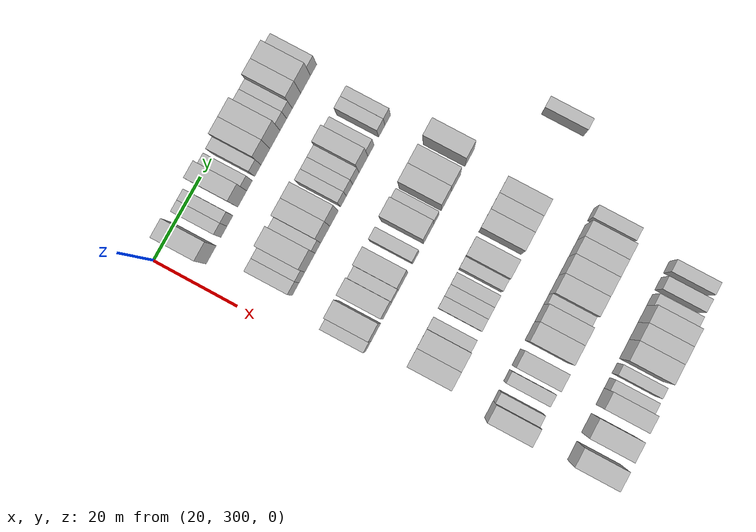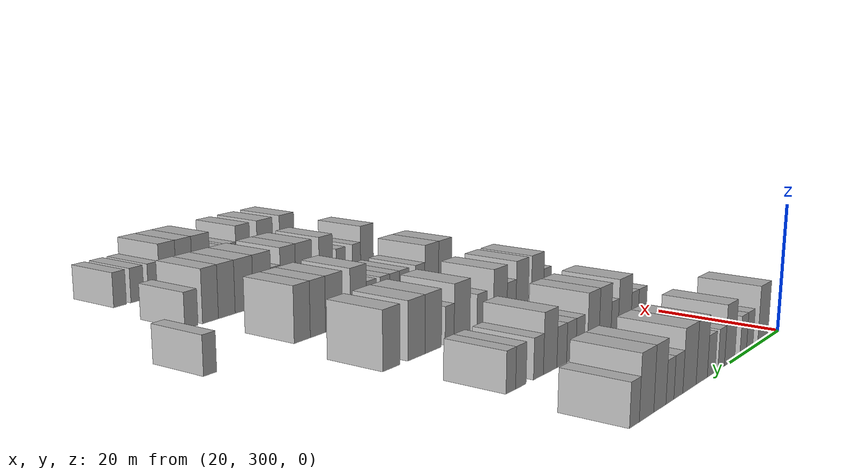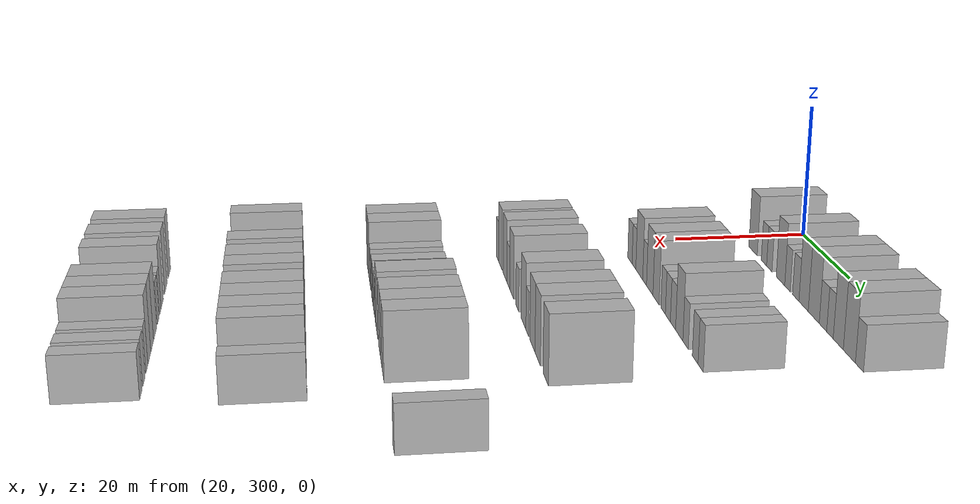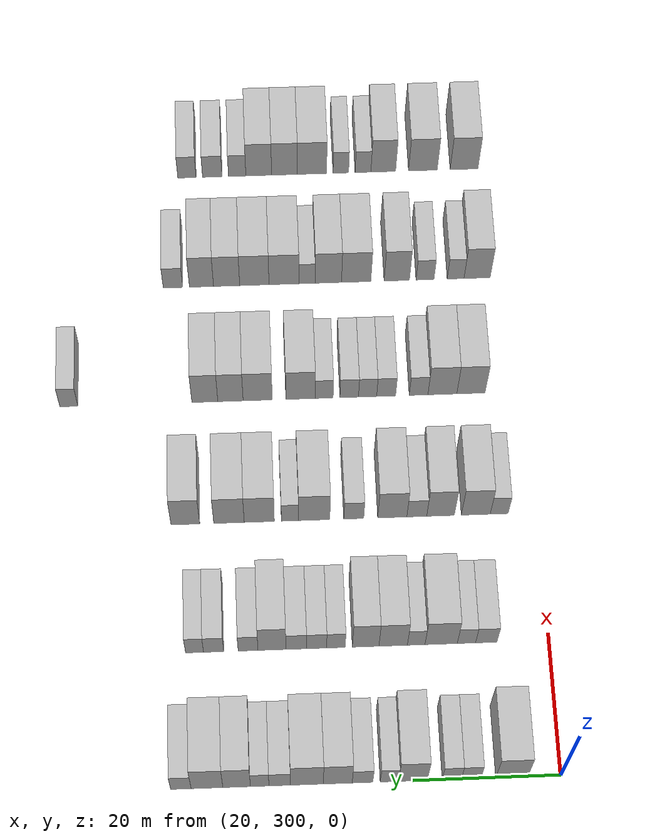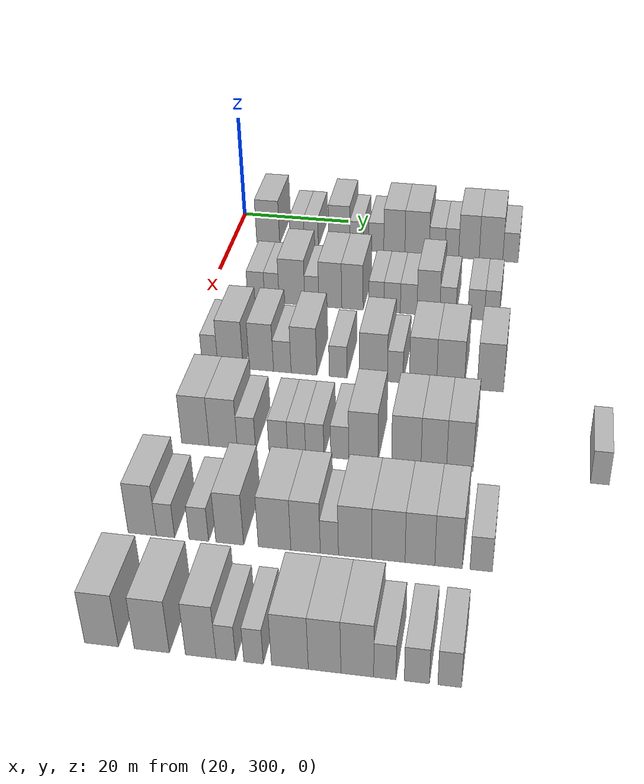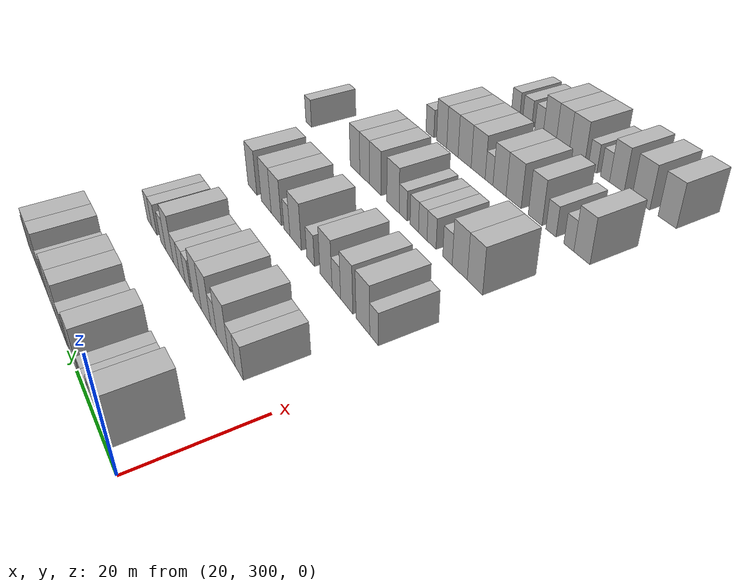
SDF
<sdf version="1.6">
 <world name="default">
  <model name="building_158">
   <static>1</static>
   <pose>25.0000 306.7007 0 0.000000 0.000000 0.000000</pose>
   <link name="link">
    <pose>0 0 4.50 0 0 0</pose>
    <collision name="collision"><geometry><box><size>10.0000 4.3283 9.0000</size></box></geometry></collision>
    <visual name="visual">
     <cast_shadows>0</cast_shadows>
     <geometry><box><size>10.0000 4.3283 9.0000</size></box></geometry>
     <material>
      <script>
       <uri>model://HANNAS_wall/materials/scripts</uri>
       <uri>model://HANNAS_wall/materials/textures</uri>
       <name>vrc/HANNAS_wall</name>
      </script>
     </material>
    </visual>
   </link>
  </model>
  <model name="building_159">
   <static>1</static>
   <pose>25.0000 312.1822 0 0.000000 0.000000 0.000000</pose>
   <link name="link">
    <pose>0 0 3.00 0 0 0</pose>
    <collision name="collision"><geometry><box><size>10.0000 2.6346 6.0000</size></box></geometry></collision>
    <visual name="visual">
     <cast_shadows>0</cast_shadows>
     <geometry><box><size>10.0000 2.6346 6.0000</size></box></geometry>
     <material>
      <script>
       <uri>model://HANNAS_wall/materials/scripts</uri>
       <uri>model://HANNAS_wall/materials/textures</uri>
       <name>vrc/HANNAS_wall</name>
      </script>
     </material>
    </visual>
   </link>
  </model>
  <model name="building_160">
   <static>1</static>
   <pose>25.0000 314.7938 0 0.000000 0.000000 0.000000</pose>
   <link name="link">
    <pose>0 0 3.00 0 0 0</pose>
    <collision name="collision"><geometry><box><size>10.0000 2.5887 6.0000</size></box></geometry></collision>
    <visual name="visual">
     <cast_shadows>0</cast_shadows>
     <geometry><box><size>10.0000 2.5887 6.0000</size></box></geometry>
     <material>
      <script>
       <uri>model://HANNAS_wall/materials/scripts</uri>
       <uri>model://HANNAS_wall/materials/textures</uri>
       <name>vrc/HANNAS_wall</name>
      </script>
     </material>
    </visual>
   </link>
  </model>
  <model name="building_161">
   <static>1</static>
   <pose>25.0000 320.0372 0 0.000000 0.000000 0.000000</pose>
   <link name="link">
    <pose>0 0 4.50 0 0 0</pose>
    <collision name="collision"><geometry><box><size>10.0000 3.8981 9.0000</size></box></geometry></collision>
    <visual name="visual">
     <cast_shadows>0</cast_shadows>
     <geometry><box><size>10.0000 3.8981 9.0000</size></box></geometry>
     <material>
      <script>
       <uri>model://HANNAS_wall/materials/scripts</uri>
       <uri>model://HANNAS_wall/materials/textures</uri>
       <name>vrc/HANNAS_wall</name>
      </script>
     </material>
    </visual>
   </link>
  </model>
  <model name="building_162">
   <static>1</static>
   <pose>25.0000 323.2115 0 0.000000 0.000000 0.000000</pose>
   <link name="link">
    <pose>0 0 3.00 0 0 0</pose>
    <collision name="collision"><geometry><box><size>10.0000 2.4505 6.0000</size></box></geometry></collision>
    <visual name="visual">
     <cast_shadows>0</cast_shadows>
     <geometry><box><size>10.0000 2.4505 6.0000</size></box></geometry>
     <material>
      <script>
       <uri>model://HANNAS_wall/materials/scripts</uri>
       <uri>model://HANNAS_wall/materials/textures</uri>
       <name>vrc/HANNAS_wall</name>
      </script>
     </material>
    </visual>
   </link>
  </model>
  <model name="building_163">
   <static>1</static>
   <pose>25.0000 326.8245 0 0.000000 0.000000 0.000000</pose>
   <link name="link">
    <pose>0 0 3.00 0 0 0</pose>
    <collision name="collision"><geometry><box><size>10.0000 2.7755 6.0000</size></box></geometry></collision>
    <visual name="visual">
     <cast_shadows>0</cast_shadows>
     <geometry><box><size>10.0000 2.7755 6.0000</size></box></geometry>
     <material>
      <script>
       <uri>model://HANNAS_wall/materials/scripts</uri>
       <uri>model://HANNAS_wall/materials/textures</uri>
       <name>vrc/HANNAS_wall</name>
      </script>
     </material>
    </visual>
   </link>
  </model>
  <model name="building_164">
   <static>1</static>
   <pose>25.0000 330.1582 0 0.000000 0.000000 0.000000</pose>
   <link name="link">
    <pose>0 0 4.50 0 0 0</pose>
    <collision name="collision"><geometry><box><size>10.0000 3.8918 9.0000</size></box></geometry></collision>
    <visual name="visual">
     <cast_shadows>0</cast_shadows>
     <geometry><box><size>10.0000 3.8918 9.0000</size></box></geometry>
     <material>
      <script>
       <uri>model://HANNAS_wall/materials/scripts</uri>
       <uri>model://HANNAS_wall/materials/textures</uri>
       <name>vrc/HANNAS_wall</name>
      </script>
     </material>
    </visual>
   </link>
  </model>
  <model name="building_165">
   <static>1</static>
   <pose>25.0000 334.3153 0 0.000000 0.000000 0.000000</pose>
   <link name="link">
    <pose>0 0 4.50 0 0 0</pose>
    <collision name="collision"><geometry><box><size>10.0000 4.4223 9.0000</size></box></geometry></collision>
    <visual name="visual">
     <cast_shadows>0</cast_shadows>
     <geometry><box><size>10.0000 4.4223 9.0000</size></box></geometry>
     <material>
      <script>
       <uri>model://HANNAS_wall/materials/scripts</uri>
       <uri>model://HANNAS_wall/materials/textures</uri>
       <name>vrc/HANNAS_wall</name>
      </script>
     </material>
    </visual>
   </link>
  </model>
  <model name="building_166">
   <static>1</static>
   <pose>25.0000 337.9644 0 0.000000 0.000000 0.000000</pose>
   <link name="link">
    <pose>0 0 3.00 0 0 0</pose>
    <collision name="collision"><geometry><box><size>10.0000 2.8760 6.0000</size></box></geometry></collision>
    <visual name="visual">
     <cast_shadows>0</cast_shadows>
     <geometry><box><size>10.0000 2.8760 6.0000</size></box></geometry>
     <material>
      <script>
       <uri>model://HANNAS_wall/materials/scripts</uri>
       <uri>model://HANNAS_wall/materials/textures</uri>
       <name>vrc/HANNAS_wall</name>
      </script>
     </material>
    </visual>
   </link>
  </model>
  <model name="building_167">
   <static>1</static>
   <pose>25.0000 340.6461 0 0.000000 0.000000 0.000000</pose>
   <link name="link">
    <pose>0 0 3.00 0 0 0</pose>
    <collision name="collision"><geometry><box><size>10.0000 2.4874 6.0000</size></box></geometry></collision>
    <visual name="visual">
     <cast_shadows>0</cast_shadows>
     <geometry><box><size>10.0000 2.4874 6.0000</size></box></geometry>
     <material>
      <script>
       <uri>model://HANNAS_wall/materials/scripts</uri>
       <uri>model://HANNAS_wall/materials/textures</uri>
       <name>vrc/HANNAS_wall</name>
      </script>
     </material>
    </visual>
   </link>
  </model>
  <model name="building_168">
   <static>1</static>
   <pose>25.0000 343.7429 0 0.000000 0.000000 0.000000</pose>
   <link name="link">
    <pose>0 0 4.50 0 0 0</pose>
    <collision name="collision"><geometry><box><size>10.0000 3.7061 9.0000</size></box></geometry></collision>
    <visual name="visual">
     <cast_shadows>0</cast_shadows>
     <geometry><box><size>10.0000 3.7061 9.0000</size></box></geometry>
     <material>
      <script>
       <uri>model://HANNAS_wall/materials/scripts</uri>
       <uri>model://HANNAS_wall/materials/textures</uri>
       <name>vrc/HANNAS_wall</name>
      </script>
     </material>
    </visual>
   </link>
  </model>
  <model name="building_169">
   <static>1</static>
   <pose>25.0000 347.7279 0 0.000000 0.000000 0.000000</pose>
   <link name="link">
    <pose>0 0 4.50 0 0 0</pose>
    <collision name="collision"><geometry><box><size>10.0000 4.2639 9.0000</size></box></geometry></collision>
    <visual name="visual">
     <cast_shadows>0</cast_shadows>
     <geometry><box><size>10.0000 4.2639 9.0000</size></box></geometry>
     <material>
      <script>
       <uri>model://HANNAS_wall/materials/scripts</uri>
       <uri>model://HANNAS_wall/materials/textures</uri>
       <name>vrc/HANNAS_wall</name>
      </script>
     </material>
    </visual>
   </link>
  </model>
  <model name="building_170">
   <static>1</static>
   <pose>25.0000 351.2377 0 0.000000 0.000000 0.000000</pose>
   <link name="link">
    <pose>0 0 3.00 0 0 0</pose>
    <collision name="collision"><geometry><box><size>10.0000 2.7558 6.0000</size></box></geometry></collision>
    <visual name="visual">
     <cast_shadows>0</cast_shadows>
     <geometry><box><size>10.0000 2.7558 6.0000</size></box></geometry>
     <material>
      <script>
       <uri>model://HANNAS_wall/materials/scripts</uri>
       <uri>model://HANNAS_wall/materials/textures</uri>
       <name>vrc/HANNAS_wall</name>
      </script>
     </material>
    </visual>
   </link>
  </model>
  <model name="building_313">
   <static>1</static>
   <pose>44.0000 308.7343 0 0.000000 0.000000 0.000000</pose>
   <link name="link">
    <pose>0 0 3.00 0 0 0</pose>
    <collision name="collision"><geometry><box><size>10.0000 2.9576 6.0000</size></box></geometry></collision>
    <visual name="visual">
     <cast_shadows>0</cast_shadows>
     <geometry><box><size>10.0000 2.9576 6.0000</size></box></geometry>
     <material>
      <script>
       <uri>model://HANNAS_wall/materials/scripts</uri>
       <uri>model://HANNAS_wall/materials/textures</uri>
       <name>vrc/HANNAS_wall</name>
      </script>
     </material>
    </visual>
   </link>
  </model>
  <model name="building_314">
   <static>1</static>
   <pose>44.0000 311.4832 0 0.000000 0.000000 0.000000</pose>
   <link name="link">
    <pose>0 0 3.00 0 0 0</pose>
    <collision name="collision"><geometry><box><size>10.0000 2.5401 6.0000</size></box></geometry></collision>
    <visual name="visual">
     <cast_shadows>0</cast_shadows>
     <geometry><box><size>10.0000 2.5401 6.0000</size></box></geometry>
     <material>
      <script>
       <uri>model://HANNAS_wall/materials/scripts</uri>
       <uri>model://HANNAS_wall/materials/textures</uri>
       <name>vrc/HANNAS_wall</name>
      </script>
     </material>
    </visual>
   </link>
  </model>
  <model name="building_315">
   <static>1</static>
   <pose>44.0000 314.9933 0 0.000000 0.000000 0.000000</pose>
   <link name="link">
    <pose>0 0 4.50 0 0 0</pose>
    <collision name="collision"><geometry><box><size>10.0000 4.4800 9.0000</size></box></geometry></collision>
    <visual name="visual">
     <cast_shadows>0</cast_shadows>
     <geometry><box><size>10.0000 4.4800 9.0000</size></box></geometry>
     <material>
      <script>
       <uri>model://HANNAS_wall/materials/scripts</uri>
       <uri>model://HANNAS_wall/materials/textures</uri>
       <name>vrc/HANNAS_wall</name>
      </script>
     </material>
    </visual>
   </link>
  </model>
  <model name="building_316">
   <static>1</static>
   <pose>44.0000 318.4525 0 0.000000 0.000000 0.000000</pose>
   <link name="link">
    <pose>0 0 3.00 0 0 0</pose>
    <collision name="collision"><geometry><box><size>10.0000 2.4384 6.0000</size></box></geometry></collision>
    <visual name="visual">
     <cast_shadows>0</cast_shadows>
     <geometry><box><size>10.0000 2.4384 6.0000</size></box></geometry>
     <material>
      <script>
       <uri>model://HANNAS_wall/materials/scripts</uri>
       <uri>model://HANNAS_wall/materials/textures</uri>
       <name>vrc/HANNAS_wall</name>
      </script>
     </material>
    </visual>
   </link>
  </model>
  <model name="building_317">
   <static>1</static>
   <pose>44.0000 321.6467 0 0.000000 0.000000 0.000000</pose>
   <link name="link">
    <pose>0 0 4.50 0 0 0</pose>
    <collision name="collision"><geometry><box><size>10.0000 3.9501 9.0000</size></box></geometry></collision>
    <visual name="visual">
     <cast_shadows>0</cast_shadows>
     <geometry><box><size>10.0000 3.9501 9.0000</size></box></geometry>
     <material>
      <script>
       <uri>model://HANNAS_wall/materials/scripts</uri>
       <uri>model://HANNAS_wall/materials/textures</uri>
       <name>vrc/HANNAS_wall</name>
      </script>
     </material>
    </visual>
   </link>
  </model>
  <model name="building_318">
   <static>1</static>
   <pose>44.0000 325.4615 0 0.000000 0.000000 0.000000</pose>
   <link name="link">
    <pose>0 0 4.50 0 0 0</pose>
    <collision name="collision"><geometry><box><size>10.0000 3.6796 9.0000</size></box></geometry></collision>
    <visual name="visual">
     <cast_shadows>0</cast_shadows>
     <geometry><box><size>10.0000 3.6796 9.0000</size></box></geometry>
     <material>
      <script>
       <uri>model://HANNAS_wall/materials/scripts</uri>
       <uri>model://HANNAS_wall/materials/textures</uri>
       <name>vrc/HANNAS_wall</name>
      </script>
     </material>
    </visual>
   </link>
  </model>
  <model name="building_319">
   <static>1</static>
   <pose>44.0000 329.5890 0 0.000000 0.000000 0.000000</pose>
   <link name="link">
    <pose>0 0 3.00 0 0 0</pose>
    <collision name="collision"><geometry><box><size>10.0000 2.5754 6.0000</size></box></geometry></collision>
    <visual name="visual">
     <cast_shadows>0</cast_shadows>
     <geometry><box><size>10.0000 2.5754 6.0000</size></box></geometry>
     <material>
      <script>
       <uri>model://HANNAS_wall/materials/scripts</uri>
       <uri>model://HANNAS_wall/materials/textures</uri>
       <name>vrc/HANNAS_wall</name>
      </script>
     </material>
    </visual>
   </link>
  </model>
  <model name="building_320">
   <static>1</static>
   <pose>44.0000 332.2682 0 0.000000 0.000000 0.000000</pose>
   <link name="link">
    <pose>0 0 3.00 0 0 0</pose>
    <collision name="collision"><geometry><box><size>10.0000 2.7831 6.0000</size></box></geometry></collision>
    <visual name="visual">
     <cast_shadows>0</cast_shadows>
     <geometry><box><size>10.0000 2.7831 6.0000</size></box></geometry>
     <material>
      <script>
       <uri>model://HANNAS_wall/materials/scripts</uri>
       <uri>model://HANNAS_wall/materials/textures</uri>
       <name>vrc/HANNAS_wall</name>
      </script>
     </material>
    </visual>
   </link>
  </model>
  <model name="building_321">
   <static>1</static>
   <pose>44.0000 335.0817 0 0.000000 0.000000 0.000000</pose>
   <link name="link">
    <pose>0 0 3.00 0 0 0</pose>
    <collision name="collision"><geometry><box><size>10.0000 2.8438 6.0000</size></box></geometry></collision>
    <visual name="visual">
     <cast_shadows>0</cast_shadows>
     <geometry><box><size>10.0000 2.8438 6.0000</size></box></geometry>
     <material>
      <script>
       <uri>model://HANNAS_wall/materials/scripts</uri>
       <uri>model://HANNAS_wall/materials/textures</uri>
       <name>vrc/HANNAS_wall</name>
      </script>
     </material>
    </visual>
   </link>
  </model>
  <model name="building_322">
   <static>1</static>
   <pose>44.0000 338.4319 0 0.000000 0.000000 0.000000</pose>
   <link name="link">
    <pose>0 0 4.50 0 0 0</pose>
    <collision name="collision"><geometry><box><size>10.0000 3.8567 9.0000</size></box></geometry></collision>
    <visual name="visual">
     <cast_shadows>0</cast_shadows>
     <geometry><box><size>10.0000 3.8567 9.0000</size></box></geometry>
     <material>
      <script>
       <uri>model://HANNAS_wall/materials/scripts</uri>
       <uri>model://HANNAS_wall/materials/textures</uri>
       <name>vrc/HANNAS_wall</name>
      </script>
     </material>
    </visual>
   </link>
  </model>
  <model name="building_323">
   <static>1</static>
   <pose>44.0000 341.7275 0 0.000000 0.000000 0.000000</pose>
   <link name="link">
    <pose>0 0 3.00 0 0 0</pose>
    <collision name="collision"><geometry><box><size>10.0000 2.7344 6.0000</size></box></geometry></collision>
    <visual name="visual">
     <cast_shadows>0</cast_shadows>
     <geometry><box><size>10.0000 2.7344 6.0000</size></box></geometry>
     <material>
      <script>
       <uri>model://HANNAS_wall/materials/scripts</uri>
       <uri>model://HANNAS_wall/materials/textures</uri>
       <name>vrc/HANNAS_wall</name>
      </script>
     </material>
    </visual>
   </link>
  </model>
  <model name="building_324">
   <static>1</static>
   <pose>44.0000 346.4876 0 0.000000 0.000000 0.000000</pose>
   <link name="link">
    <pose>0 0 3.00 0 0 0</pose>
    <collision name="collision"><geometry><box><size>10.0000 2.7858 6.0000</size></box></geometry></collision>
    <visual name="visual">
     <cast_shadows>0</cast_shadows>
     <geometry><box><size>10.0000 2.7858 6.0000</size></box></geometry>
     <material>
      <script>
       <uri>model://HANNAS_wall/materials/scripts</uri>
       <uri>model://HANNAS_wall/materials/textures</uri>
       <name>vrc/HANNAS_wall</name>
      </script>
     </material>
    </visual>
   </link>
  </model>
  <model name="building_325">
   <static>1</static>
   <pose>44.0000 349.1232 0 0.000000 0.000000 0.000000</pose>
   <link name="link">
    <pose>0 0 3.00 0 0 0</pose>
    <collision name="collision"><geometry><box><size>10.0000 2.4853 6.0000</size></box></geometry></collision>
    <visual name="visual">
     <cast_shadows>0</cast_shadows>
     <geometry><box><size>10.0000 2.4853 6.0000</size></box></geometry>
     <material>
      <script>
       <uri>model://HANNAS_wall/materials/scripts</uri>
       <uri>model://HANNAS_wall/materials/textures</uri>
       <name>vrc/HANNAS_wall</name>
      </script>
     </material>
    </visual>
   </link>
  </model>
  <model name="building_491">
   <static>1</static>
   <pose>63.0000 305.4681 0 0.000000 0.000000 0.000000</pose>
   <link name="link">
    <pose>0 0 3.00 0 0 0</pose>
    <collision name="collision"><geometry><box><size>10.0000 2.5485 6.0000</size></box></geometry></collision>
    <visual name="visual">
     <cast_shadows>0</cast_shadows>
     <geometry><box><size>10.0000 2.5485 6.0000</size></box></geometry>
     <material>
      <script>
       <uri>model://HANNAS_wall/materials/scripts</uri>
       <uri>model://HANNAS_wall/materials/textures</uri>
       <name>vrc/HANNAS_wall</name>
      </script>
     </material>
    </visual>
   </link>
  </model>
  <model name="building_492">
   <static>1</static>
   <pose>63.0000 308.8068 0 0.000000 0.000000 0.000000</pose>
   <link name="link">
    <pose>0 0 4.50 0 0 0</pose>
    <collision name="collision"><geometry><box><size>10.0000 4.1291 9.0000</size></box></geometry></collision>
    <visual name="visual">
     <cast_shadows>0</cast_shadows>
     <geometry><box><size>10.0000 4.1291 9.0000</size></box></geometry>
     <material>
      <script>
       <uri>model://HANNAS_wall/materials/scripts</uri>
       <uri>model://HANNAS_wall/materials/textures</uri>
       <name>vrc/HANNAS_wall</name>
      </script>
     </material>
    </visual>
   </link>
  </model>
  <model name="building_493">
   <static>1</static>
   <pose>63.0000 313.8423 0 0.000000 0.000000 0.000000</pose>
   <link name="link">
    <pose>0 0 4.50 0 0 0</pose>
    <collision name="collision"><geometry><box><size>10.0000 3.9418 9.0000</size></box></geometry></collision>
    <visual name="visual">
     <cast_shadows>0</cast_shadows>
     <geometry><box><size>10.0000 3.9418 9.0000</size></box></geometry>
     <material>
      <script>
       <uri>model://HANNAS_wall/materials/scripts</uri>
       <uri>model://HANNAS_wall/materials/textures</uri>
       <name>vrc/HANNAS_wall</name>
      </script>
     </material>
    </visual>
   </link>
  </model>
  <model name="building_494">
   <static>1</static>
   <pose>63.0000 317.2311 0 0.000000 0.000000 0.000000</pose>
   <link name="link">
    <pose>0 0 3.00 0 0 0</pose>
    <collision name="collision"><geometry><box><size>10.0000 2.8358 6.0000</size></box></geometry></collision>
    <visual name="visual">
     <cast_shadows>0</cast_shadows>
     <geometry><box><size>10.0000 2.8358 6.0000</size></box></geometry>
     <material>
      <script>
       <uri>model://HANNAS_wall/materials/scripts</uri>
       <uri>model://HANNAS_wall/materials/textures</uri>
       <name>vrc/HANNAS_wall</name>
      </script>
     </material>
    </visual>
   </link>
  </model>
  <model name="building_495">
   <static>1</static>
   <pose>63.0000 320.7220 0 0.000000 0.000000 0.000000</pose>
   <link name="link">
    <pose>0 0 4.50 0 0 0</pose>
    <collision name="collision"><geometry><box><size>10.0000 4.1461 9.0000</size></box></geometry></collision>
    <visual name="visual">
     <cast_shadows>0</cast_shadows>
     <geometry><box><size>10.0000 4.1461 9.0000</size></box></geometry>
     <material>
      <script>
       <uri>model://HANNAS_wall/materials/scripts</uri>
       <uri>model://HANNAS_wall/materials/textures</uri>
       <name>vrc/HANNAS_wall</name>
      </script>
     </material>
    </visual>
   </link>
  </model>
  <model name="building_496">
   <static>1</static>
   <pose>63.0000 326.2124 0 0.000000 0.000000 0.000000</pose>
   <link name="link">
    <pose>0 0 3.00 0 0 0</pose>
    <collision name="collision"><geometry><box><size>10.0000 2.8347 6.0000</size></box></geometry></collision>
    <visual name="visual">
     <cast_shadows>0</cast_shadows>
     <geometry><box><size>10.0000 2.8347 6.0000</size></box></geometry>
     <material>
      <script>
       <uri>model://HANNAS_wall/materials/scripts</uri>
       <uri>model://HANNAS_wall/materials/textures</uri>
       <name>vrc/HANNAS_wall</name>
      </script>
     </material>
    </visual>
   </link>
  </model>
  <model name="building_497">
   <static>1</static>
   <pose>63.0000 331.8517 0 0.000000 0.000000 0.000000</pose>
   <link name="link">
    <pose>0 0 4.50 0 0 0</pose>
    <collision name="collision"><geometry><box><size>10.0000 4.4437 9.0000</size></box></geometry></collision>
    <visual name="visual">
     <cast_shadows>0</cast_shadows>
     <geometry><box><size>10.0000 4.4437 9.0000</size></box></geometry>
     <material>
      <script>
       <uri>model://HANNAS_wall/materials/scripts</uri>
       <uri>model://HANNAS_wall/materials/textures</uri>
       <name>vrc/HANNAS_wall</name>
      </script>
     </material>
    </visual>
   </link>
  </model>
  <model name="building_498">
   <static>1</static>
   <pose>63.0000 335.2922 0 0.000000 0.000000 0.000000</pose>
   <link name="link">
    <pose>0 0 3.00 0 0 0</pose>
    <collision name="collision"><geometry><box><size>10.0000 2.4373 6.0000</size></box></geometry></collision>
    <visual name="visual">
     <cast_shadows>0</cast_shadows>
     <geometry><box><size>10.0000 2.4373 6.0000</size></box></geometry>
     <material>
      <script>
       <uri>model://HANNAS_wall/materials/scripts</uri>
       <uri>model://HANNAS_wall/materials/textures</uri>
       <name>vrc/HANNAS_wall</name>
      </script>
     </material>
    </visual>
   </link>
  </model>
  <model name="building_499">
   <static>1</static>
   <pose>63.0000 339.6512 0 0.000000 0.000000 0.000000</pose>
   <link name="link">
    <pose>0 0 4.50 0 0 0</pose>
    <collision name="collision"><geometry><box><size>10.0000 4.2808 9.0000</size></box></geometry></collision>
    <visual name="visual">
     <cast_shadows>0</cast_shadows>
     <geometry><box><size>10.0000 4.2808 9.0000</size></box></geometry>
     <material>
      <script>
       <uri>model://HANNAS_wall/materials/scripts</uri>
       <uri>model://HANNAS_wall/materials/textures</uri>
       <name>vrc/HANNAS_wall</name>
      </script>
     </material>
    </visual>
   </link>
  </model>
  <model name="building_500">
   <static>1</static>
   <pose>63.0000 343.9558 0 0.000000 0.000000 0.000000</pose>
   <link name="link">
    <pose>0 0 4.50 0 0 0</pose>
    <collision name="collision"><geometry><box><size>10.0000 4.3283 9.0000</size></box></geometry></collision>
    <visual name="visual">
     <cast_shadows>0</cast_shadows>
     <geometry><box><size>10.0000 4.3283 9.0000</size></box></geometry>
     <material>
      <script>
       <uri>model://HANNAS_wall/materials/scripts</uri>
       <uri>model://HANNAS_wall/materials/textures</uri>
       <name>vrc/HANNAS_wall</name>
      </script>
     </material>
    </visual>
   </link>
  </model>
  <model name="building_501">
   <static>1</static>
   <pose>63.0000 350.1601 0 0.000000 0.000000 0.000000</pose>
   <link name="link">
    <pose>0 0 4.50 0 0 0</pose>
    <collision name="collision"><geometry><box><size>10.0000 4.0803 9.0000</size></box></geometry></collision>
    <visual name="visual">
     <cast_shadows>0</cast_shadows>
     <geometry><box><size>10.0000 4.0803 9.0000</size></box></geometry>
     <material>
      <script>
       <uri>model://HANNAS_wall/materials/scripts</uri>
       <uri>model://HANNAS_wall/materials/textures</uri>
       <name>vrc/HANNAS_wall</name>
      </script>
     </material>
    </visual>
   </link>
  </model>
  <model name="building_653">
   <static>1</static>
   <pose>82.0000 308.1485 0 0.000000 0.000000 0.000000</pose>
   <link name="link">
    <pose>0 0 4.50 0 0 0</pose>
    <collision name="collision"><geometry><box><size>10.0000 4.1357 9.0000</size></box></geometry></collision>
    <visual name="visual">
     <cast_shadows>0</cast_shadows>
     <geometry><box><size>10.0000 4.1357 9.0000</size></box></geometry>
     <material>
      <script>
       <uri>model://HANNAS_wall/materials/scripts</uri>
       <uri>model://HANNAS_wall/materials/textures</uri>
       <name>vrc/HANNAS_wall</name>
      </script>
     </material>
    </visual>
   </link>
  </model>
  <model name="building_654">
   <static>1</static>
   <pose>82.0000 312.3355 0 0.000000 0.000000 0.000000</pose>
   <link name="link">
    <pose>0 0 4.50 0 0 0</pose>
    <collision name="collision"><geometry><box><size>10.0000 4.2384 9.0000</size></box></geometry></collision>
    <visual name="visual">
     <cast_shadows>0</cast_shadows>
     <geometry><box><size>10.0000 4.2384 9.0000</size></box></geometry>
     <material>
      <script>
       <uri>model://HANNAS_wall/materials/scripts</uri>
       <uri>model://HANNAS_wall/materials/textures</uri>
       <name>vrc/HANNAS_wall</name>
      </script>
     </material>
    </visual>
   </link>
  </model>
  <model name="building_655">
   <static>1</static>
   <pose>82.0000 315.8222 0 0.000000 0.000000 0.000000</pose>
   <link name="link">
    <pose>0 0 3.00 0 0 0</pose>
    <collision name="collision"><geometry><box><size>10.0000 2.7349 6.0000</size></box></geometry></collision>
    <visual name="visual">
     <cast_shadows>0</cast_shadows>
     <geometry><box><size>10.0000 2.7349 6.0000</size></box></geometry>
     <material>
      <script>
       <uri>model://HANNAS_wall/materials/scripts</uri>
       <uri>model://HANNAS_wall/materials/textures</uri>
       <name>vrc/HANNAS_wall</name>
      </script>
     </material>
    </visual>
   </link>
  </model>
  <model name="building_656">
   <static>1</static>
   <pose>82.0000 320.5748 0 0.000000 0.000000 0.000000</pose>
   <link name="link">
    <pose>0 0 3.00 0 0 0</pose>
    <collision name="collision"><geometry><box><size>10.0000 2.7703 6.0000</size></box></geometry></collision>
    <visual name="visual">
     <cast_shadows>0</cast_shadows>
     <geometry><box><size>10.0000 2.7703 6.0000</size></box></geometry>
     <material>
      <script>
       <uri>model://HANNAS_wall/materials/scripts</uri>
       <uri>model://HANNAS_wall/materials/textures</uri>
       <name>vrc/HANNAS_wall</name>
      </script>
     </material>
    </visual>
   </link>
  </model>
  <model name="building_657">
   <static>1</static>
   <pose>82.0000 323.2922 0 0.000000 0.000000 0.000000</pose>
   <link name="link">
    <pose>0 0 3.00 0 0 0</pose>
    <collision name="collision"><geometry><box><size>10.0000 2.6645 6.0000</size></box></geometry></collision>
    <visual name="visual">
     <cast_shadows>0</cast_shadows>
     <geometry><box><size>10.0000 2.6645 6.0000</size></box></geometry>
     <material>
      <script>
       <uri>model://HANNAS_wall/materials/scripts</uri>
       <uri>model://HANNAS_wall/materials/textures</uri>
       <name>vrc/HANNAS_wall</name>
      </script>
     </material>
    </visual>
   </link>
  </model>
  <model name="building_658">
   <static>1</static>
   <pose>82.0000 325.9817 0 0.000000 0.000000 0.000000</pose>
   <link name="link">
    <pose>0 0 3.00 0 0 0</pose>
    <collision name="collision"><geometry><box><size>10.0000 2.7147 6.0000</size></box></geometry></collision>
    <visual name="visual">
     <cast_shadows>0</cast_shadows>
     <geometry><box><size>10.0000 2.7147 6.0000</size></box></geometry>
     <material>
      <script>
       <uri>model://HANNAS_wall/materials/scripts</uri>
       <uri>model://HANNAS_wall/materials/textures</uri>
       <name>vrc/HANNAS_wall</name>
      </script>
     </material>
    </visual>
   </link>
  </model>
  <model name="building_659">
   <static>1</static>
   <pose>82.0000 329.6601 0 0.000000 0.000000 0.000000</pose>
   <link name="link">
    <pose>0 0 3.00 0 0 0</pose>
    <collision name="collision"><geometry><box><size>10.0000 2.6422 6.0000</size></box></geometry></collision>
    <visual name="visual">
     <cast_shadows>0</cast_shadows>
     <geometry><box><size>10.0000 2.6422 6.0000</size></box></geometry>
     <material>
      <script>
       <uri>model://HANNAS_wall/materials/scripts</uri>
       <uri>model://HANNAS_wall/materials/textures</uri>
       <name>vrc/HANNAS_wall</name>
      </script>
     </material>
    </visual>
   </link>
  </model>
  <model name="building_660">
   <static>1</static>
   <pose>82.0000 333.1102 0 0.000000 0.000000 0.000000</pose>
   <link name="link">
    <pose>0 0 4.50 0 0 0</pose>
    <collision name="collision"><geometry><box><size>10.0000 4.2580 9.0000</size></box></geometry></collision>
    <visual name="visual">
     <cast_shadows>0</cast_shadows>
     <geometry><box><size>10.0000 4.2580 9.0000</size></box></geometry>
     <material>
      <script>
       <uri>model://HANNAS_wall/materials/scripts</uri>
       <uri>model://HANNAS_wall/materials/textures</uri>
       <name>vrc/HANNAS_wall</name>
      </script>
     </material>
    </visual>
   </link>
  </model>
  <model name="building_661">
   <static>1</static>
   <pose>82.0000 339.3638 0 0.000000 0.000000 0.000000</pose>
   <link name="link">
    <pose>0 0 4.50 0 0 0</pose>
    <collision name="collision"><geometry><box><size>10.0000 4.2490 9.0000</size></box></geometry></collision>
    <visual name="visual">
     <cast_shadows>0</cast_shadows>
     <geometry><box><size>10.0000 4.2490 9.0000</size></box></geometry>
     <material>
      <script>
       <uri>model://HANNAS_wall/materials/scripts</uri>
       <uri>model://HANNAS_wall/materials/textures</uri>
       <name>vrc/HANNAS_wall</name>
      </script>
     </material>
    </visual>
   </link>
  </model>
  <model name="building_662">
   <static>1</static>
   <pose>82.0000 343.3364 0 0.000000 0.000000 0.000000</pose>
   <link name="link">
    <pose>0 0 4.50 0 0 0</pose>
    <collision name="collision"><geometry><box><size>10.0000 3.6961 9.0000</size></box></geometry></collision>
    <visual name="visual">
     <cast_shadows>0</cast_shadows>
     <geometry><box><size>10.0000 3.6961 9.0000</size></box></geometry>
     <material>
      <script>
       <uri>model://HANNAS_wall/materials/scripts</uri>
       <uri>model://HANNAS_wall/materials/textures</uri>
       <name>vrc/HANNAS_wall</name>
      </script>
     </material>
    </visual>
   </link>
  </model>
  <model name="building_663">
   <static>1</static>
   <pose>82.0000 347.0735 0 0.000000 0.000000 0.000000</pose>
   <link name="link">
    <pose>0 0 4.50 0 0 0</pose>
    <collision name="collision"><geometry><box><size>10.0000 3.7782 9.0000</size></box></geometry></collision>
    <visual name="visual">
     <cast_shadows>0</cast_shadows>
     <geometry><box><size>10.0000 3.7782 9.0000</size></box></geometry>
     <material>
      <script>
       <uri>model://HANNAS_wall/materials/scripts</uri>
       <uri>model://HANNAS_wall/materials/textures</uri>
       <name>vrc/HANNAS_wall</name>
      </script>
     </material>
    </visual>
   </link>
  </model>
  <model name="building_664">
   <static>1</static>
   <pose>82.0000 366.9134 0 0.000000 0.000000 0.000000</pose>
   <link name="link">
    <pose>0 0 3.00 0 0 0</pose>
    <collision name="collision"><geometry><box><size>10.0000 2.6339 6.0000</size></box></geometry></collision>
    <visual name="visual">
     <cast_shadows>0</cast_shadows>
     <geometry><box><size>10.0000 2.6339 6.0000</size></box></geometry>
     <material>
      <script>
       <uri>model://HANNAS_wall/materials/scripts</uri>
       <uri>model://HANNAS_wall/materials/textures</uri>
       <name>vrc/HANNAS_wall</name>
      </script>
     </material>
    </visual>
   </link>
  </model>
  <model name="building_832">
   <static>1</static>
   <pose>101.0000 305.8733 0 0.000000 0.000000 0.000000</pose>
   <link name="link">
    <pose>0 0 4.50 0 0 0</pose>
    <collision name="collision"><geometry><box><size>10.0000 3.9345 9.0000</size></box></geometry></collision>
    <visual name="visual">
     <cast_shadows>0</cast_shadows>
     <geometry><box><size>10.0000 3.9345 9.0000</size></box></geometry>
     <material>
      <script>
       <uri>model://HANNAS_wall/materials/scripts</uri>
       <uri>model://HANNAS_wall/materials/textures</uri>
       <name>vrc/HANNAS_wall</name>
      </script>
     </material>
    </visual>
   </link>
  </model>
  <model name="building_833">
   <static>1</static>
   <pose>101.0000 309.1017 0 0.000000 0.000000 0.000000</pose>
   <link name="link">
    <pose>0 0 3.00 0 0 0</pose>
    <collision name="collision"><geometry><box><size>10.0000 2.5225 6.0000</size></box></geometry></collision>
    <visual name="visual">
     <cast_shadows>0</cast_shadows>
     <geometry><box><size>10.0000 2.5225 6.0000</size></box></geometry>
     <material>
      <script>
       <uri>model://HANNAS_wall/materials/scripts</uri>
       <uri>model://HANNAS_wall/materials/textures</uri>
       <name>vrc/HANNAS_wall</name>
      </script>
     </material>
    </visual>
   </link>
  </model>
  <model name="building_834">
   <static>1</static>
   <pose>101.0000 313.7083 0 0.000000 0.000000 0.000000</pose>
   <link name="link">
    <pose>0 0 3.00 0 0 0</pose>
    <collision name="collision"><geometry><box><size>10.0000 2.6907 6.0000</size></box></geometry></collision>
    <visual name="visual">
     <cast_shadows>0</cast_shadows>
     <geometry><box><size>10.0000 2.6907 6.0000</size></box></geometry>
     <material>
      <script>
       <uri>model://HANNAS_wall/materials/scripts</uri>
       <uri>model://HANNAS_wall/materials/textures</uri>
       <name>vrc/HANNAS_wall</name>
      </script>
     </material>
    </visual>
   </link>
  </model>
  <model name="building_835">
   <static>1</static>
   <pose>101.0000 317.9551 0 0.000000 0.000000 0.000000</pose>
   <link name="link">
    <pose>0 0 4.50 0 0 0</pose>
    <collision name="collision"><geometry><box><size>10.0000 3.8027 9.0000</size></box></geometry></collision>
    <visual name="visual">
     <cast_shadows>0</cast_shadows>
     <geometry><box><size>10.0000 3.8027 9.0000</size></box></geometry>
     <material>
      <script>
       <uri>model://HANNAS_wall/materials/scripts</uri>
       <uri>model://HANNAS_wall/materials/textures</uri>
       <name>vrc/HANNAS_wall</name>
      </script>
     </material>
    </visual>
   </link>
  </model>
  <model name="building_836">
   <static>1</static>
   <pose>101.0000 324.0608 0 0.000000 0.000000 0.000000</pose>
   <link name="link">
    <pose>0 0 4.50 0 0 0</pose>
    <collision name="collision"><geometry><box><size>10.0000 4.4088 9.0000</size></box></geometry></collision>
    <visual name="visual">
     <cast_shadows>0</cast_shadows>
     <geometry><box><size>10.0000 4.4088 9.0000</size></box></geometry>
     <material>
      <script>
       <uri>model://HANNAS_wall/materials/scripts</uri>
       <uri>model://HANNAS_wall/materials/textures</uri>
       <name>vrc/HANNAS_wall</name>
      </script>
     </material>
    </visual>
   </link>
  </model>
  <model name="building_837">
   <static>1</static>
   <pose>101.0000 328.2527 0 0.000000 0.000000 0.000000</pose>
   <link name="link">
    <pose>0 0 4.50 0 0 0</pose>
    <collision name="collision"><geometry><box><size>10.0000 3.9750 9.0000</size></box></geometry></collision>
    <visual name="visual">
     <cast_shadows>0</cast_shadows>
     <geometry><box><size>10.0000 3.9750 9.0000</size></box></geometry>
     <material>
      <script>
       <uri>model://HANNAS_wall/materials/scripts</uri>
       <uri>model://HANNAS_wall/materials/textures</uri>
       <name>vrc/HANNAS_wall</name>
      </script>
     </material>
    </visual>
   </link>
  </model>
  <model name="building_838">
   <static>1</static>
   <pose>101.0000 331.4534 0 0.000000 0.000000 0.000000</pose>
   <link name="link">
    <pose>0 0 3.00 0 0 0</pose>
    <collision name="collision"><geometry><box><size>10.0000 2.4264 6.0000</size></box></geometry></collision>
    <visual name="visual">
     <cast_shadows>0</cast_shadows>
     <geometry><box><size>10.0000 2.4264 6.0000</size></box></geometry>
     <material>
      <script>
       <uri>model://HANNAS_wall/materials/scripts</uri>
       <uri>model://HANNAS_wall/materials/textures</uri>
       <name>vrc/HANNAS_wall</name>
      </script>
     </material>
    </visual>
   </link>
  </model>
  <model name="building_839">
   <static>1</static>
   <pose>101.0000 334.9091 0 0.000000 0.000000 0.000000</pose>
   <link name="link">
    <pose>0 0 4.50 0 0 0</pose>
    <collision name="collision"><geometry><box><size>10.0000 4.4850 9.0000</size></box></geometry></collision>
    <visual name="visual">
     <cast_shadows>0</cast_shadows>
     <geometry><box><size>10.0000 4.4850 9.0000</size></box></geometry>
     <material>
      <script>
       <uri>model://HANNAS_wall/materials/scripts</uri>
       <uri>model://HANNAS_wall/materials/textures</uri>
       <name>vrc/HANNAS_wall</name>
      </script>
     </material>
    </visual>
   </link>
  </model>
  <model name="building_840">
   <static>1</static>
   <pose>101.0000 339.3461 0 0.000000 0.000000 0.000000</pose>
   <link name="link">
    <pose>0 0 4.50 0 0 0</pose>
    <collision name="collision"><geometry><box><size>10.0000 4.3890 9.0000</size></box></geometry></collision>
    <visual name="visual">
     <cast_shadows>0</cast_shadows>
     <geometry><box><size>10.0000 4.3890 9.0000</size></box></geometry>
     <material>
      <script>
       <uri>model://HANNAS_wall/materials/scripts</uri>
       <uri>model://HANNAS_wall/materials/textures</uri>
       <name>vrc/HANNAS_wall</name>
      </script>
     </material>
    </visual>
   </link>
  </model>
  <model name="building_841">
   <static>1</static>
   <pose>101.0000 343.5009 0 0.000000 0.000000 0.000000</pose>
   <link name="link">
    <pose>0 0 4.50 0 0 0</pose>
    <collision name="collision"><geometry><box><size>10.0000 3.9208 9.0000</size></box></geometry></collision>
    <visual name="visual">
     <cast_shadows>0</cast_shadows>
     <geometry><box><size>10.0000 3.9208 9.0000</size></box></geometry>
     <material>
      <script>
       <uri>model://HANNAS_wall/materials/scripts</uri>
       <uri>model://HANNAS_wall/materials/textures</uri>
       <name>vrc/HANNAS_wall</name>
      </script>
     </material>
    </visual>
   </link>
  </model>
  <model name="building_842">
   <static>1</static>
   <pose>101.0000 347.2684 0 0.000000 0.000000 0.000000</pose>
   <link name="link">
    <pose>0 0 4.50 0 0 0</pose>
    <collision name="collision"><geometry><box><size>10.0000 3.6142 9.0000</size></box></geometry></collision>
    <visual name="visual">
     <cast_shadows>0</cast_shadows>
     <geometry><box><size>10.0000 3.6142 9.0000</size></box></geometry>
     <material>
      <script>
       <uri>model://HANNAS_wall/materials/scripts</uri>
       <uri>model://HANNAS_wall/materials/textures</uri>
       <name>vrc/HANNAS_wall</name>
      </script>
     </material>
    </visual>
   </link>
  </model>
  <model name="building_843">
   <static>1</static>
   <pose>101.0000 351.5352 0 0.000000 0.000000 0.000000</pose>
   <link name="link">
    <pose>0 0 3.00 0 0 0</pose>
    <collision name="collision"><geometry><box><size>10.0000 2.9194 6.0000</size></box></geometry></collision>
    <visual name="visual">
     <cast_shadows>0</cast_shadows>
     <geometry><box><size>10.0000 2.9194 6.0000</size></box></geometry>
     <material>
      <script>
       <uri>model://HANNAS_wall/materials/scripts</uri>
       <uri>model://HANNAS_wall/materials/textures</uri>
       <name>vrc/HANNAS_wall</name>
      </script>
     </material>
    </visual>
   </link>
  </model>
  <model name="building_1003">
   <static>1</static>
   <pose>120.0000 306.5153 0 0.000000 0.000000 0.000000</pose>
   <link name="link">
    <pose>0 0 4.50 0 0 0</pose>
    <collision name="collision"><geometry><box><size>10.0000 4.2795 9.0000</size></box></geometry></collision>
    <visual name="visual">
     <cast_shadows>0</cast_shadows>
     <geometry><box><size>10.0000 4.2795 9.0000</size></box></geometry>
     <material>
      <script>
       <uri>model://HANNAS_wall/materials/scripts</uri>
       <uri>model://HANNAS_wall/materials/textures</uri>
       <name>vrc/HANNAS_wall</name>
      </script>
     </material>
    </visual>
   </link>
  </model>
  <model name="building_1004">
   <static>1</static>
   <pose>120.0000 312.8640 0 0.000000 0.000000 0.000000</pose>
   <link name="link">
    <pose>0 0 4.50 0 0 0</pose>
    <collision name="collision"><geometry><box><size>10.0000 4.4179 9.0000</size></box></geometry></collision>
    <visual name="visual">
     <cast_shadows>0</cast_shadows>
     <geometry><box><size>10.0000 4.4179 9.0000</size></box></geometry>
     <material>
      <script>
       <uri>model://HANNAS_wall/materials/scripts</uri>
       <uri>model://HANNAS_wall/materials/textures</uri>
       <name>vrc/HANNAS_wall</name>
      </script>
     </material>
    </visual>
   </link>
  </model>
  <model name="building_1005">
   <static>1</static>
   <pose>120.0000 318.9771 0 0.000000 0.000000 0.000000</pose>
   <link name="link">
    <pose>0 0 4.50 0 0 0</pose>
    <collision name="collision"><geometry><box><size>10.0000 3.8084 9.0000</size></box></geometry></collision>
    <visual name="visual">
     <cast_shadows>0</cast_shadows>
     <geometry><box><size>10.0000 3.8084 9.0000</size></box></geometry>
     <material>
      <script>
       <uri>model://HANNAS_wall/materials/scripts</uri>
       <uri>model://HANNAS_wall/materials/textures</uri>
       <name>vrc/HANNAS_wall</name>
      </script>
     </material>
    </visual>
   </link>
  </model>
  <model name="building_1006">
   <static>1</static>
   <pose>120.0000 322.1003 0 0.000000 0.000000 0.000000</pose>
   <link name="link">
    <pose>0 0 3.00 0 0 0</pose>
    <collision name="collision"><geometry><box><size>10.0000 2.4381 6.0000</size></box></geometry></collision>
    <visual name="visual">
     <cast_shadows>0</cast_shadows>
     <geometry><box><size>10.0000 2.4381 6.0000</size></box></geometry>
     <material>
      <script>
       <uri>model://HANNAS_wall/materials/scripts</uri>
       <uri>model://HANNAS_wall/materials/textures</uri>
       <name>vrc/HANNAS_wall</name>
      </script>
     </material>
    </visual>
   </link>
  </model>
  <model name="building_1007">
   <static>1</static>
   <pose>120.0000 325.5224 0 0.000000 0.000000 0.000000</pose>
   <link name="link">
    <pose>0 0 3.00 0 0 0</pose>
    <collision name="collision"><geometry><box><size>10.0000 2.4061 6.0000</size></box></geometry></collision>
    <visual name="visual">
     <cast_shadows>0</cast_shadows>
     <geometry><box><size>10.0000 2.4061 6.0000</size></box></geometry>
     <material>
      <script>
       <uri>model://HANNAS_wall/materials/scripts</uri>
       <uri>model://HANNAS_wall/materials/textures</uri>
       <name>vrc/HANNAS_wall</name>
      </script>
     </material>
    </visual>
   </link>
  </model>
  <model name="building_1008">
   <static>1</static>
   <pose>120.0000 329.9729 0 0.000000 0.000000 0.000000</pose>
   <link name="link">
    <pose>0 0 4.50 0 0 0</pose>
    <collision name="collision"><geometry><box><size>10.0000 4.4950 9.0000</size></box></geometry></collision>
    <visual name="visual">
     <cast_shadows>0</cast_shadows>
     <geometry><box><size>10.0000 4.4950 9.0000</size></box></geometry>
     <material>
      <script>
       <uri>model://HANNAS_wall/materials/scripts</uri>
       <uri>model://HANNAS_wall/materials/textures</uri>
       <name>vrc/HANNAS_wall</name>
      </script>
     </material>
    </visual>
   </link>
  </model>
  <model name="building_1009">
   <static>1</static>
   <pose>120.0000 334.2036 0 0.000000 0.000000 0.000000</pose>
   <link name="link">
    <pose>0 0 4.50 0 0 0</pose>
    <collision name="collision"><geometry><box><size>10.0000 3.9665 9.0000</size></box></geometry></collision>
    <visual name="visual">
     <cast_shadows>0</cast_shadows>
     <geometry><box><size>10.0000 3.9665 9.0000</size></box></geometry>
     <material>
      <script>
       <uri>model://HANNAS_wall/materials/scripts</uri>
       <uri>model://HANNAS_wall/materials/textures</uri>
       <name>vrc/HANNAS_wall</name>
      </script>
     </material>
    </visual>
   </link>
  </model>
  <model name="building_1010">
   <static>1</static>
   <pose>120.0000 338.1659 0 0.000000 0.000000 0.000000</pose>
   <link name="link">
    <pose>0 0 4.50 0 0 0</pose>
    <collision name="collision"><geometry><box><size>10.0000 3.9580 9.0000</size></box></geometry></collision>
    <visual name="visual">
     <cast_shadows>0</cast_shadows>
     <geometry><box><size>10.0000 3.9580 9.0000</size></box></geometry>
     <material>
      <script>
       <uri>model://HANNAS_wall/materials/scripts</uri>
       <uri>model://HANNAS_wall/materials/textures</uri>
       <name>vrc/HANNAS_wall</name>
      </script>
     </material>
    </visual>
   </link>
  </model>
  <model name="building_1011">
   <static>1</static>
   <pose>120.0000 341.4771 0 0.000000 0.000000 0.000000</pose>
   <link name="link">
    <pose>0 0 3.00 0 0 0</pose>
    <collision name="collision"><geometry><box><size>10.0000 2.6643 6.0000</size></box></geometry></collision>
    <visual name="visual">
     <cast_shadows>0</cast_shadows>
     <geometry><box><size>10.0000 2.6643 6.0000</size></box></geometry>
     <material>
      <script>
       <uri>model://HANNAS_wall/materials/scripts</uri>
       <uri>model://HANNAS_wall/materials/textures</uri>
       <name>vrc/HANNAS_wall</name>
      </script>
     </material>
    </visual>
   </link>
  </model>
  <model name="building_1012">
   <static>1</static>
   <pose>120.0000 345.3043 0 0.000000 0.000000 0.000000</pose>
   <link name="link">
    <pose>0 0 3.00 0 0 0</pose>
    <collision name="collision"><geometry><box><size>10.0000 2.9900 6.0000</size></box></geometry></collision>
    <visual name="visual">
     <cast_shadows>0</cast_shadows>
     <geometry><box><size>10.0000 2.9900 6.0000</size></box></geometry>
     <material>
      <script>
       <uri>model://HANNAS_wall/materials/scripts</uri>
       <uri>model://HANNAS_wall/materials/textures</uri>
       <name>vrc/HANNAS_wall</name>
      </script>
     </material>
    </visual>
   </link>
  </model>
  <model name="building_1013">
   <static>1</static>
   <pose>120.0000 349.2011 0 0.000000 0.000000 0.000000</pose>
   <link name="link">
    <pose>0 0 3.00 0 0 0</pose>
    <collision name="collision"><geometry><box><size>10.0000 2.8037 6.0000</size></box></geometry></collision>
    <visual name="visual">
     <cast_shadows>0</cast_shadows>
     <geometry><box><size>10.0000 2.8037 6.0000</size></box></geometry>
     <material>
      <script>
       <uri>model://HANNAS_wall/materials/scripts</uri>
       <uri>model://HANNAS_wall/materials/textures</uri>
       <name>vrc/HANNAS_wall</name>
      </script>
     </material>
    </visual>
   </link>
  </model>
 </world>
</sdf>
